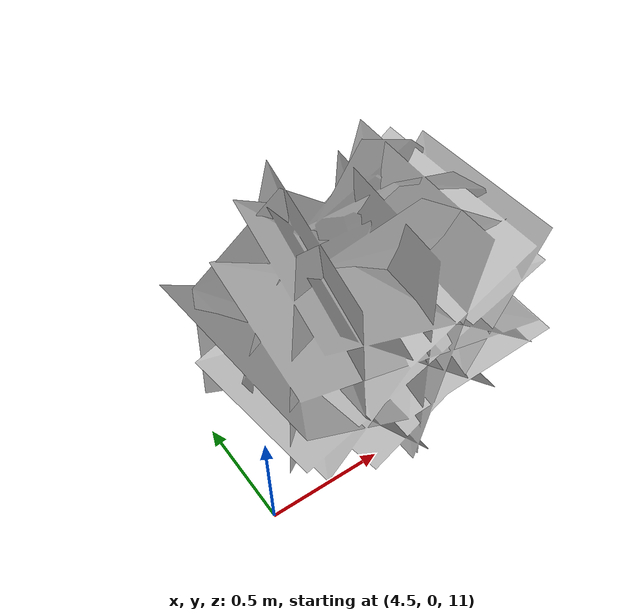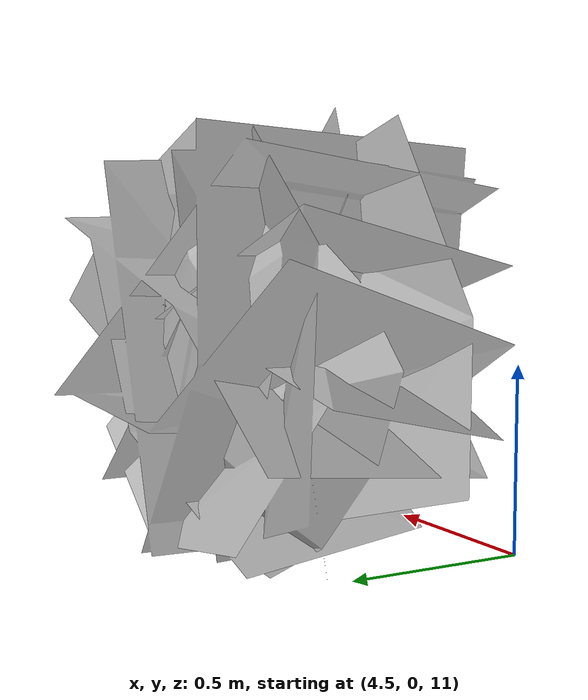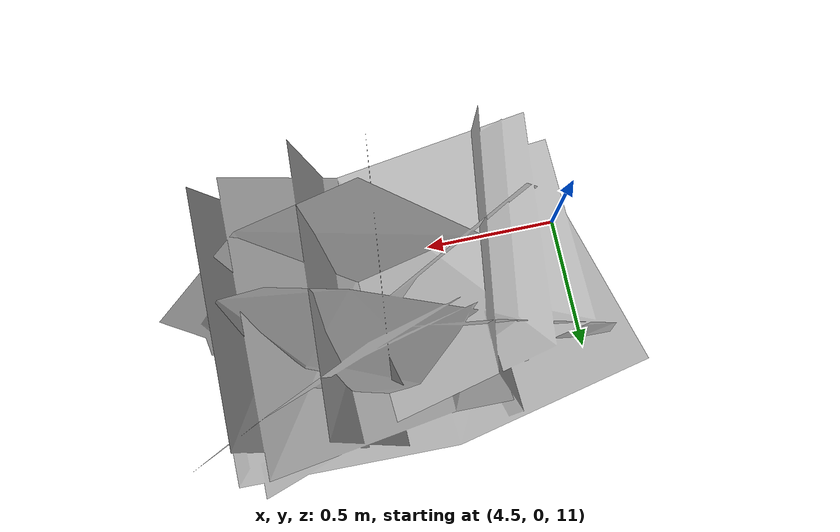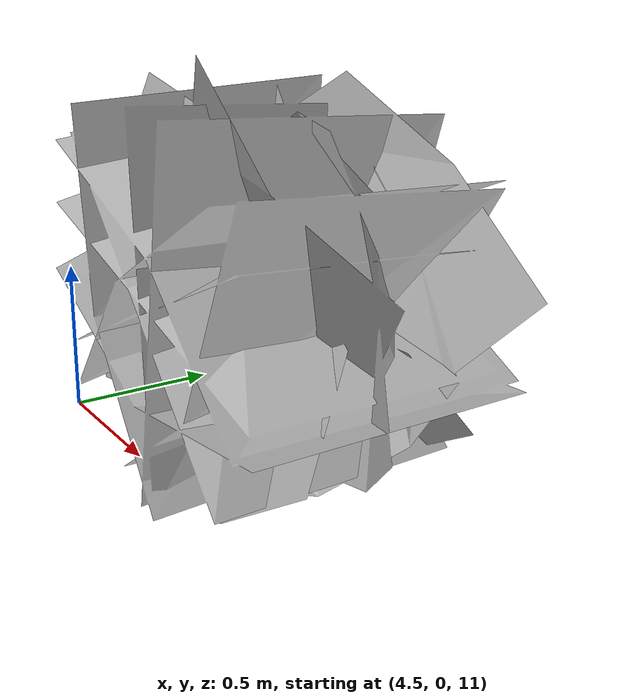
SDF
<?xml version="1.0" ?>
<sdf version="1.9">
  <model name="flowers_02">
    <static>true</static>
    <link name="link">
      <collision name="collision">
        <pose>0 0 0.2 0 0 0</pose>
        <geometry>
          <box>
            <size>0.5 0.5 0.4</size>
          </box>
        </geometry>
      </collision>
      <visual name="visual">
        <geometry>
          <mesh>
            <uri>model://flowers_02/meshes/Flowers-02.obj</uri>
          </mesh>
        </geometry>
      </visual>
    </link>
  </model>
</sdf>
